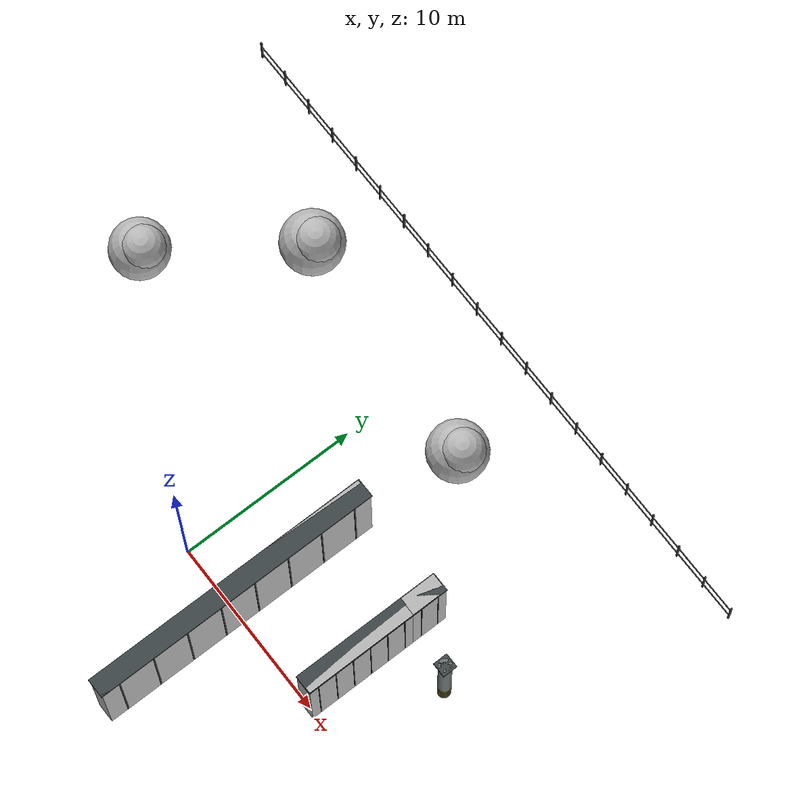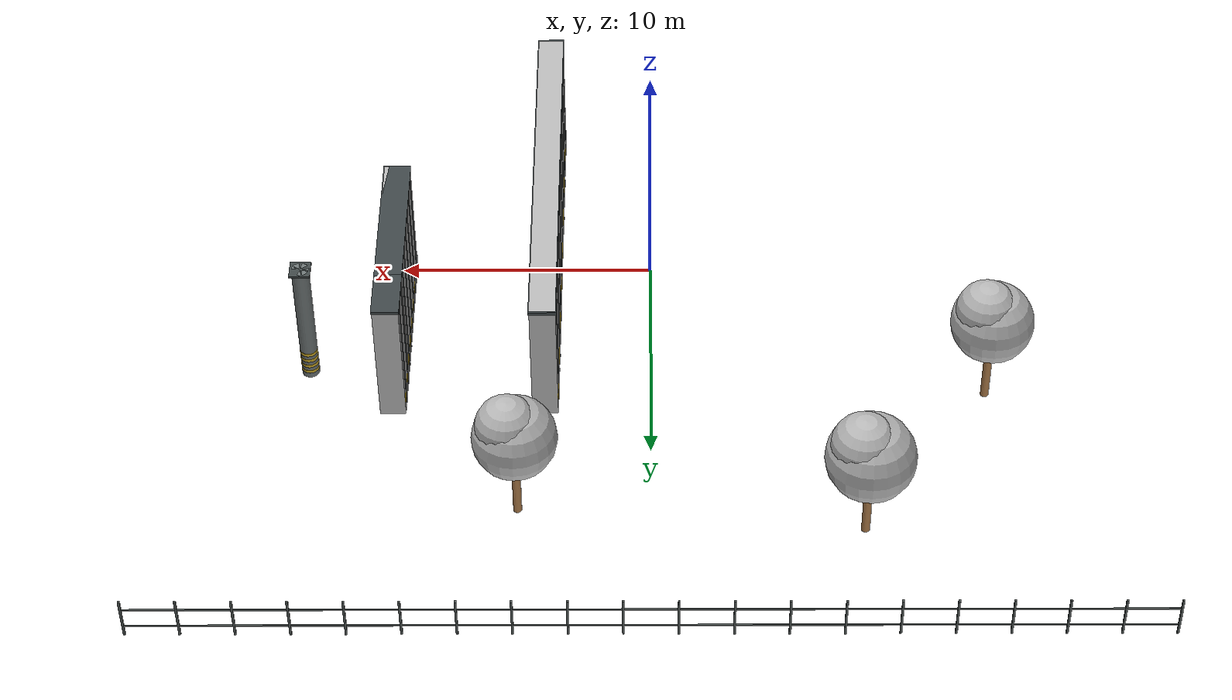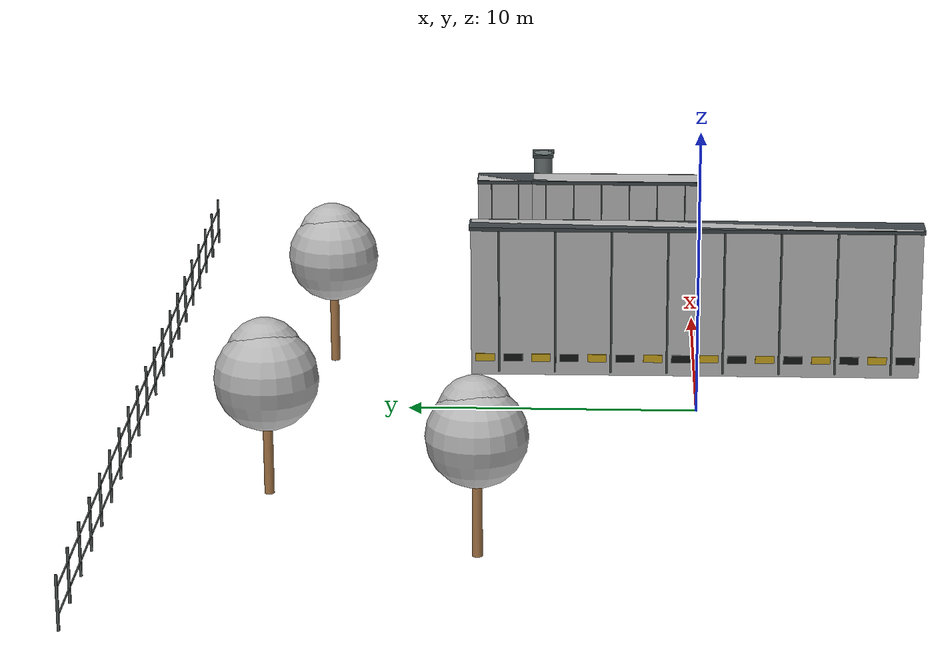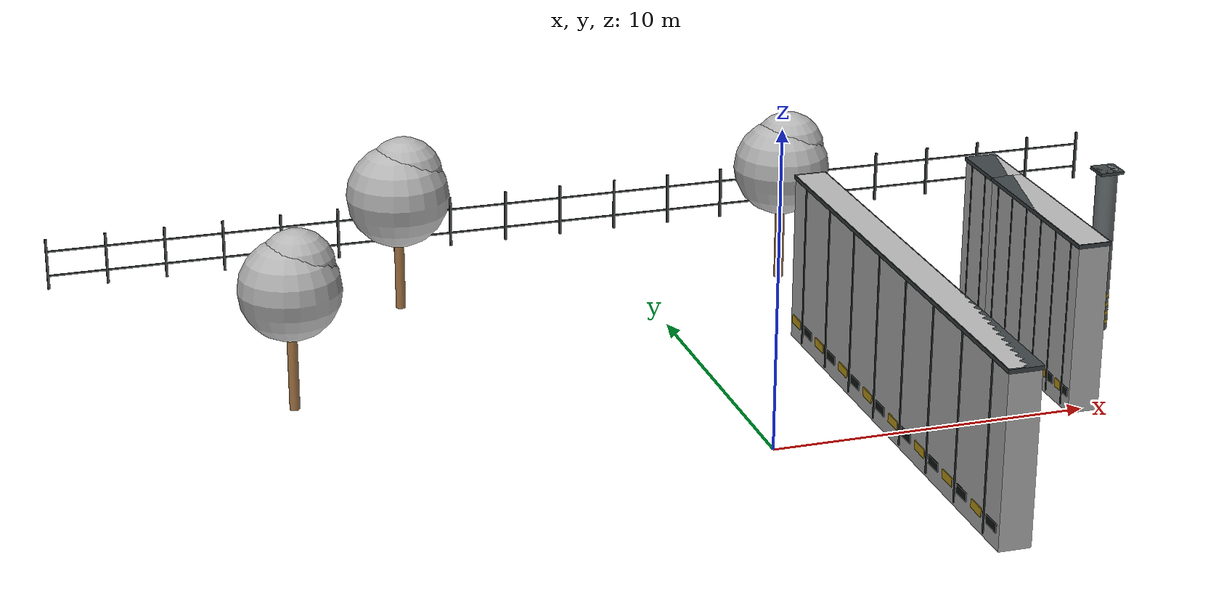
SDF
<sdf version="1.5">
 <world name="default">
  <include><uri>model://sun</uri></include>
  <model name="obstacle_wall_1">
   <static>true</static>
   <pose>4.078 0 0.003 0 0 0</pose>
   <link name="structure">
    <visual name="collision_wall">
     <pose>0 0 2.75 0 0 0</pose>
     <geometry><box><size>1 16 5.5</size></box></geometry>
     <material>
      <script>
       <uri>file:///home/fxxk/px4_agent/scene/materials/scripts</uri>
       <uri>file:///home/fxxk/px4_agent/scene/materials/textures</uri>
       <name>Yard/concrete</name>
      </script>
     </material>
    </visual>
    <collision name="collision_wall_collision">
     <pose>0 0 2.75 0 0 0</pose>
     <geometry><box><size>1 16 5.5</size></box></geometry>
     <surface><friction><ode><mu>1.0</mu><mu2>1.0</mu2></ode></friction></surface>
    </collision>
    <visual name="wall_coping">
     <pose>0 0 5.435 0 0 0</pose>
     <geometry><box><size>1.06 16.12 0.13</size></box></geometry>
     <material>
      <ambient>0.24 0.27 0.28 1</ambient>
      <diffuse>0.24 0.27 0.28 1</diffuse>
      <specular>0.04 0.04 0.04 1</specular>
     </material>
    </visual>
    <visual name="panel_joint_-1_0">
     <pose>-0.513 -7 2.75 0 0 0</pose>
     <geometry><box><size>0.028 0.068 5.3</size></box></geometry>
     <material>
      <ambient>0.26 0.29 0.29 1</ambient>
      <diffuse>0.26 0.29 0.29 1</diffuse>
      <specular>0.04 0.04 0.04 1</specular>
     </material>
    </visual>
    <visual name="panel_joint_1_0">
     <pose>0.513 -7 2.75 0 0 0</pose>
     <geometry><box><size>0.028 0.068 5.3</size></box></geometry>
     <material>
      <ambient>0.26 0.29 0.29 1</ambient>
      <diffuse>0.26 0.29 0.29 1</diffuse>
      <specular>0.04 0.04 0.04 1</specular>
     </material>
    </visual>
    <visual name="panel_joint_-1_1">
     <pose>-0.513 -5 2.75 0 0 0</pose>
     <geometry><box><size>0.028 0.068 5.3</size></box></geometry>
     <material>
      <ambient>0.26 0.29 0.29 1</ambient>
      <diffuse>0.26 0.29 0.29 1</diffuse>
      <specular>0.04 0.04 0.04 1</specular>
     </material>
    </visual>
    <visual name="panel_joint_1_1">
     <pose>0.513 -5 2.75 0 0 0</pose>
     <geometry><box><size>0.028 0.068 5.3</size></box></geometry>
     <material>
      <ambient>0.26 0.29 0.29 1</ambient>
      <diffuse>0.26 0.29 0.29 1</diffuse>
      <specular>0.04 0.04 0.04 1</specular>
     </material>
    </visual>
    <visual name="panel_joint_-1_2">
     <pose>-0.513 -3 2.75 0 0 0</pose>
     <geometry><box><size>0.028 0.068 5.3</size></box></geometry>
     <material>
      <ambient>0.26 0.29 0.29 1</ambient>
      <diffuse>0.26 0.29 0.29 1</diffuse>
      <specular>0.04 0.04 0.04 1</specular>
     </material>
    </visual>
    <visual name="panel_joint_1_2">
     <pose>0.513 -3 2.75 0 0 0</pose>
     <geometry><box><size>0.028 0.068 5.3</size></box></geometry>
     <material>
      <ambient>0.26 0.29 0.29 1</ambient>
      <diffuse>0.26 0.29 0.29 1</diffuse>
      <specular>0.04 0.04 0.04 1</specular>
     </material>
    </visual>
    <visual name="panel_joint_-1_3">
     <pose>-0.513 -1 2.75 0 0 0</pose>
     <geometry><box><size>0.028 0.068 5.3</size></box></geometry>
     <material>
      <ambient>0.26 0.29 0.29 1</ambient>
      <diffuse>0.26 0.29 0.29 1</diffuse>
      <specular>0.04 0.04 0.04 1</specular>
     </material>
    </visual>
    <visual name="panel_joint_1_3">
     <pose>0.513 -1 2.75 0 0 0</pose>
     <geometry><box><size>0.028 0.068 5.3</size></box></geometry>
     <material>
      <ambient>0.26 0.29 0.29 1</ambient>
      <diffuse>0.26 0.29 0.29 1</diffuse>
      <specular>0.04 0.04 0.04 1</specular>
     </material>
    </visual>
    <visual name="panel_joint_-1_4">
     <pose>-0.513 1 2.75 0 0 0</pose>
     <geometry><box><size>0.028 0.068 5.3</size></box></geometry>
     <material>
      <ambient>0.26 0.29 0.29 1</ambient>
      <diffuse>0.26 0.29 0.29 1</diffuse>
      <specular>0.04 0.04 0.04 1</specular>
     </material>
    </visual>
    <visual name="panel_joint_1_4">
     <pose>0.513 1 2.75 0 0 0</pose>
     <geometry><box><size>0.028 0.068 5.3</size></box></geometry>
     <material>
      <ambient>0.26 0.29 0.29 1</ambient>
      <diffuse>0.26 0.29 0.29 1</diffuse>
      <specular>0.04 0.04 0.04 1</specular>
     </material>
    </visual>
    <visual name="panel_joint_-1_5">
     <pose>-0.513 3 2.75 0 0 0</pose>
     <geometry><box><size>0.028 0.068 5.3</size></box></geometry>
     <material>
      <ambient>0.26 0.29 0.29 1</ambient>
      <diffuse>0.26 0.29 0.29 1</diffuse>
      <specular>0.04 0.04 0.04 1</specular>
     </material>
    </visual>
    <visual name="panel_joint_1_5">
     <pose>0.513 3 2.75 0 0 0</pose>
     <geometry><box><size>0.028 0.068 5.3</size></box></geometry>
     <material>
      <ambient>0.26 0.29 0.29 1</ambient>
      <diffuse>0.26 0.29 0.29 1</diffuse>
      <specular>0.04 0.04 0.04 1</specular>
     </material>
    </visual>
    <visual name="panel_joint_-1_6">
     <pose>-0.513 5 2.75 0 0 0</pose>
     <geometry><box><size>0.028 0.068 5.3</size></box></geometry>
     <material>
      <ambient>0.26 0.29 0.29 1</ambient>
      <diffuse>0.26 0.29 0.29 1</diffuse>
      <specular>0.04 0.04 0.04 1</specular>
     </material>
    </visual>
    <visual name="panel_joint_1_6">
     <pose>0.513 5 2.75 0 0 0</pose>
     <geometry><box><size>0.028 0.068 5.3</size></box></geometry>
     <material>
      <ambient>0.26 0.29 0.29 1</ambient>
      <diffuse>0.26 0.29 0.29 1</diffuse>
      <specular>0.04 0.04 0.04 1</specular>
     </material>
    </visual>
    <visual name="panel_joint_-1_7">
     <pose>-0.513 7 2.75 0 0 0</pose>
     <geometry><box><size>0.028 0.068 5.3</size></box></geometry>
     <material>
      <ambient>0.26 0.29 0.29 1</ambient>
      <diffuse>0.26 0.29 0.29 1</diffuse>
      <specular>0.04 0.04 0.04 1</specular>
     </material>
    </visual>
    <visual name="panel_joint_1_7">
     <pose>0.513 7 2.75 0 0 0</pose>
     <geometry><box><size>0.028 0.068 5.3</size></box></geometry>
     <material>
      <ambient>0.26 0.29 0.29 1</ambient>
      <diffuse>0.26 0.29 0.29 1</diffuse>
      <specular>0.04 0.04 0.04 1</specular>
     </material>
    </visual>
    <visual name="safety_band_0">
     <pose>-0.517 -7.5 0.65 0 0 0</pose>
     <geometry><box><size>0.025 0.68 0.28</size></box></geometry>
     <material>
      <ambient>0.075 0.085 0.085 1</ambient>
      <diffuse>0.075 0.085 0.085 1</diffuse>
      <specular>0.04 0.04 0.04 1</specular>
     </material>
    </visual>
    <visual name="safety_band_1">
     <pose>-0.517 -6.5 0.65 0 0 0</pose>
     <geometry><box><size>0.025 0.68 0.28</size></box></geometry>
     <material>
      <ambient>0.78 0.64 0.1 1</ambient>
      <diffuse>0.78 0.64 0.1 1</diffuse>
      <specular>0.04 0.04 0.04 1</specular>
     </material>
    </visual>
    <visual name="safety_band_2">
     <pose>-0.517 -5.5 0.65 0 0 0</pose>
     <geometry><box><size>0.025 0.68 0.28</size></box></geometry>
     <material>
      <ambient>0.075 0.085 0.085 1</ambient>
      <diffuse>0.075 0.085 0.085 1</diffuse>
      <specular>0.04 0.04 0.04 1</specular>
     </material>
    </visual>
    <visual name="safety_band_3">
     <pose>-0.517 -4.5 0.65 0 0 0</pose>
     <geometry><box><size>0.025 0.68 0.28</size></box></geometry>
     <material>
      <ambient>0.78 0.64 0.1 1</ambient>
      <diffuse>0.78 0.64 0.1 1</diffuse>
      <specular>0.04 0.04 0.04 1</specular>
     </material>
    </visual>
    <visual name="safety_band_4">
     <pose>-0.517 -3.5 0.65 0 0 0</pose>
     <geometry><box><size>0.025 0.68 0.28</size></box></geometry>
     <material>
      <ambient>0.075 0.085 0.085 1</ambient>
      <diffuse>0.075 0.085 0.085 1</diffuse>
      <specular>0.04 0.04 0.04 1</specular>
     </material>
    </visual>
    <visual name="safety_band_5">
     <pose>-0.517 -2.5 0.65 0 0 0</pose>
     <geometry><box><size>0.025 0.68 0.28</size></box></geometry>
     <material>
      <ambient>0.78 0.64 0.1 1</ambient>
      <diffuse>0.78 0.64 0.1 1</diffuse>
      <specular>0.04 0.04 0.04 1</specular>
     </material>
    </visual>
    <visual name="safety_band_6">
     <pose>-0.517 -1.5 0.65 0 0 0</pose>
     <geometry><box><size>0.025 0.68 0.28</size></box></geometry>
     <material>
      <ambient>0.075 0.085 0.085 1</ambient>
      <diffuse>0.075 0.085 0.085 1</diffuse>
      <specular>0.04 0.04 0.04 1</specular>
     </material>
    </visual>
    <visual name="safety_band_7">
     <pose>-0.517 -0.5 0.65 0 0 0</pose>
     <geometry><box><size>0.025 0.68 0.28</size></box></geometry>
     <material>
      <ambient>0.78 0.64 0.1 1</ambient>
      <diffuse>0.78 0.64 0.1 1</diffuse>
      <specular>0.04 0.04 0.04 1</specular>
     </material>
    </visual>
    <visual name="safety_band_8">
     <pose>-0.517 0.5 0.65 0 0 0</pose>
     <geometry><box><size>0.025 0.68 0.28</size></box></geometry>
     <material>
      <ambient>0.075 0.085 0.085 1</ambient>
      <diffuse>0.075 0.085 0.085 1</diffuse>
      <specular>0.04 0.04 0.04 1</specular>
     </material>
    </visual>
    <visual name="safety_band_9">
     <pose>-0.517 1.5 0.65 0 0 0</pose>
     <geometry><box><size>0.025 0.68 0.28</size></box></geometry>
     <material>
      <ambient>0.78 0.64 0.1 1</ambient>
      <diffuse>0.78 0.64 0.1 1</diffuse>
      <specular>0.04 0.04 0.04 1</specular>
     </material>
    </visual>
    <visual name="safety_band_10">
     <pose>-0.517 2.5 0.65 0 0 0</pose>
     <geometry><box><size>0.025 0.68 0.28</size></box></geometry>
     <material>
      <ambient>0.075 0.085 0.085 1</ambient>
      <diffuse>0.075 0.085 0.085 1</diffuse>
      <specular>0.04 0.04 0.04 1</specular>
     </material>
    </visual>
    <visual name="safety_band_11">
     <pose>-0.517 3.5 0.65 0 0 0</pose>
     <geometry><box><size>0.025 0.68 0.28</size></box></geometry>
     <material>
      <ambient>0.78 0.64 0.1 1</ambient>
      <diffuse>0.78 0.64 0.1 1</diffuse>
      <specular>0.04 0.04 0.04 1</specular>
     </material>
    </visual>
    <visual name="safety_band_12">
     <pose>-0.517 4.5 0.65 0 0 0</pose>
     <geometry><box><size>0.025 0.68 0.28</size></box></geometry>
     <material>
      <ambient>0.075 0.085 0.085 1</ambient>
      <diffuse>0.075 0.085 0.085 1</diffuse>
      <specular>0.04 0.04 0.04 1</specular>
     </material>
    </visual>
    <visual name="safety_band_13">
     <pose>-0.517 5.5 0.65 0 0 0</pose>
     <geometry><box><size>0.025 0.68 0.28</size></box></geometry>
     <material>
      <ambient>0.78 0.64 0.1 1</ambient>
      <diffuse>0.78 0.64 0.1 1</diffuse>
      <specular>0.04 0.04 0.04 1</specular>
     </material>
    </visual>
    <visual name="safety_band_14">
     <pose>-0.517 6.5 0.65 0 0 0</pose>
     <geometry><box><size>0.025 0.68 0.28</size></box></geometry>
     <material>
      <ambient>0.075 0.085 0.085 1</ambient>
      <diffuse>0.075 0.085 0.085 1</diffuse>
      <specular>0.04 0.04 0.04 1</specular>
     </material>
    </visual>
    <visual name="safety_band_15">
     <pose>-0.517 7.5 0.65 0 0 0</pose>
     <geometry><box><size>0.025 0.68 0.28</size></box></geometry>
     <material>
      <ambient>0.78 0.64 0.1 1</ambient>
      <diffuse>0.78 0.64 0.1 1</diffuse>
      <specular>0.04 0.04 0.04 1</specular>
     </material>
    </visual>
   </link>
  </model>
  <model name="obstacle_wall_2">
   <static>true</static>
   <pose>9.971 2.9055 0.003 0 0 0</pose>
   <link name="structure">
    <visual name="collision_wall">
     <pose>0 0 2.75 0 0 0</pose>
     <geometry><box><size>1 6.189 5.5</size></box></geometry>
     <material>
      <script>
       <uri>file:///home/fxxk/px4_agent/scene/materials/scripts</uri>
       <uri>file:///home/fxxk/px4_agent/scene/materials/textures</uri>
       <name>Yard/concrete</name>
      </script>
     </material>
    </visual>
    <collision name="collision_wall_collision">
     <pose>0 0 2.75 0 0 0</pose>
     <geometry><box><size>1 6.189 5.5</size></box></geometry>
     <surface><friction><ode><mu>1.0</mu><mu2>1.0</mu2></ode></friction></surface>
    </collision>
    <visual name="wall_coping">
     <pose>0 0 5.435 0 0 0</pose>
     <geometry><box><size>1.06 6.25089 0.13</size></box></geometry>
     <material>
      <ambient>0.24 0.27 0.28 1</ambient>
      <diffuse>0.24 0.27 0.28 1</diffuse>
      <specular>0.04 0.04 0.04 1</specular>
     </material>
    </visual>
    <visual name="panel_joint_-1_0">
     <pose>-0.513 -2.57875 2.75 0 0 0</pose>
     <geometry><box><size>0.028 0.035071 5.3</size></box></geometry>
     <material>
      <ambient>0.26 0.29 0.29 1</ambient>
      <diffuse>0.26 0.29 0.29 1</diffuse>
      <specular>0.04 0.04 0.04 1</specular>
     </material>
    </visual>
    <visual name="panel_joint_1_0">
     <pose>0.513 -2.57875 2.75 0 0 0</pose>
     <geometry><box><size>0.028 0.035071 5.3</size></box></geometry>
     <material>
      <ambient>0.26 0.29 0.29 1</ambient>
      <diffuse>0.26 0.29 0.29 1</diffuse>
      <specular>0.04 0.04 0.04 1</specular>
     </material>
    </visual>
    <visual name="panel_joint_-1_1">
     <pose>-0.513 -1.54725 2.75 0 0 0</pose>
     <geometry><box><size>0.028 0.035071 5.3</size></box></geometry>
     <material>
      <ambient>0.26 0.29 0.29 1</ambient>
      <diffuse>0.26 0.29 0.29 1</diffuse>
      <specular>0.04 0.04 0.04 1</specular>
     </material>
    </visual>
    <visual name="panel_joint_1_1">
     <pose>0.513 -1.54725 2.75 0 0 0</pose>
     <geometry><box><size>0.028 0.035071 5.3</size></box></geometry>
     <material>
      <ambient>0.26 0.29 0.29 1</ambient>
      <diffuse>0.26 0.29 0.29 1</diffuse>
      <specular>0.04 0.04 0.04 1</specular>
     </material>
    </visual>
    <visual name="panel_joint_-1_2">
     <pose>-0.513 -0.51575 2.75 0 0 0</pose>
     <geometry><box><size>0.028 0.035071 5.3</size></box></geometry>
     <material>
      <ambient>0.26 0.29 0.29 1</ambient>
      <diffuse>0.26 0.29 0.29 1</diffuse>
      <specular>0.04 0.04 0.04 1</specular>
     </material>
    </visual>
    <visual name="panel_joint_1_2">
     <pose>0.513 -0.51575 2.75 0 0 0</pose>
     <geometry><box><size>0.028 0.035071 5.3</size></box></geometry>
     <material>
      <ambient>0.26 0.29 0.29 1</ambient>
      <diffuse>0.26 0.29 0.29 1</diffuse>
      <specular>0.04 0.04 0.04 1</specular>
     </material>
    </visual>
    <visual name="panel_joint_-1_3">
     <pose>-0.513 0.51575 2.75 0 0 0</pose>
     <geometry><box><size>0.028 0.035071 5.3</size></box></geometry>
     <material>
      <ambient>0.26 0.29 0.29 1</ambient>
      <diffuse>0.26 0.29 0.29 1</diffuse>
      <specular>0.04 0.04 0.04 1</specular>
     </material>
    </visual>
    <visual name="panel_joint_1_3">
     <pose>0.513 0.51575 2.75 0 0 0</pose>
     <geometry><box><size>0.028 0.035071 5.3</size></box></geometry>
     <material>
      <ambient>0.26 0.29 0.29 1</ambient>
      <diffuse>0.26 0.29 0.29 1</diffuse>
      <specular>0.04 0.04 0.04 1</specular>
     </material>
    </visual>
    <visual name="panel_joint_-1_4">
     <pose>-0.513 1.54725 2.75 0 0 0</pose>
     <geometry><box><size>0.028 0.035071 5.3</size></box></geometry>
     <material>
      <ambient>0.26 0.29 0.29 1</ambient>
      <diffuse>0.26 0.29 0.29 1</diffuse>
      <specular>0.04 0.04 0.04 1</specular>
     </material>
    </visual>
    <visual name="panel_joint_1_4">
     <pose>0.513 1.54725 2.75 0 0 0</pose>
     <geometry><box><size>0.028 0.035071 5.3</size></box></geometry>
     <material>
      <ambient>0.26 0.29 0.29 1</ambient>
      <diffuse>0.26 0.29 0.29 1</diffuse>
      <specular>0.04 0.04 0.04 1</specular>
     </material>
    </visual>
    <visual name="panel_joint_-1_5">
     <pose>-0.513 2.57875 2.75 0 0 0</pose>
     <geometry><box><size>0.028 0.035071 5.3</size></box></geometry>
     <material>
      <ambient>0.26 0.29 0.29 1</ambient>
      <diffuse>0.26 0.29 0.29 1</diffuse>
      <specular>0.04 0.04 0.04 1</specular>
     </material>
    </visual>
    <visual name="panel_joint_1_5">
     <pose>0.513 2.57875 2.75 0 0 0</pose>
     <geometry><box><size>0.028 0.035071 5.3</size></box></geometry>
     <material>
      <ambient>0.26 0.29 0.29 1</ambient>
      <diffuse>0.26 0.29 0.29 1</diffuse>
      <specular>0.04 0.04 0.04 1</specular>
     </material>
    </visual>
    <visual name="safety_band_0">
     <pose>-0.517 -2.836625 0.65 0 0 0</pose>
     <geometry><box><size>0.025 0.35071 0.28</size></box></geometry>
     <material>
      <ambient>0.075 0.085 0.085 1</ambient>
      <diffuse>0.075 0.085 0.085 1</diffuse>
      <specular>0.04 0.04 0.04 1</specular>
     </material>
    </visual>
    <visual name="safety_band_1">
     <pose>-0.517 -2.320875 0.65 0 0 0</pose>
     <geometry><box><size>0.025 0.35071 0.28</size></box></geometry>
     <material>
      <ambient>0.78 0.64 0.1 1</ambient>
      <diffuse>0.78 0.64 0.1 1</diffuse>
      <specular>0.04 0.04 0.04 1</specular>
     </material>
    </visual>
    <visual name="safety_band_2">
     <pose>-0.517 -1.805125 0.65 0 0 0</pose>
     <geometry><box><size>0.025 0.35071 0.28</size></box></geometry>
     <material>
      <ambient>0.075 0.085 0.085 1</ambient>
      <diffuse>0.075 0.085 0.085 1</diffuse>
      <specular>0.04 0.04 0.04 1</specular>
     </material>
    </visual>
    <visual name="safety_band_3">
     <pose>-0.517 -1.289375 0.65 0 0 0</pose>
     <geometry><box><size>0.025 0.35071 0.28</size></box></geometry>
     <material>
      <ambient>0.78 0.64 0.1 1</ambient>
      <diffuse>0.78 0.64 0.1 1</diffuse>
      <specular>0.04 0.04 0.04 1</specular>
     </material>
    </visual>
    <visual name="safety_band_4">
     <pose>-0.517 -0.773625 0.65 0 0 0</pose>
     <geometry><box><size>0.025 0.35071 0.28</size></box></geometry>
     <material>
      <ambient>0.075 0.085 0.085 1</ambient>
      <diffuse>0.075 0.085 0.085 1</diffuse>
      <specular>0.04 0.04 0.04 1</specular>
     </material>
    </visual>
    <visual name="safety_band_5">
     <pose>-0.517 -0.257875 0.65 0 0 0</pose>
     <geometry><box><size>0.025 0.35071 0.28</size></box></geometry>
     <material>
      <ambient>0.78 0.64 0.1 1</ambient>
      <diffuse>0.78 0.64 0.1 1</diffuse>
      <specular>0.04 0.04 0.04 1</specular>
     </material>
    </visual>
    <visual name="safety_band_6">
     <pose>-0.517 0.257875 0.65 0 0 0</pose>
     <geometry><box><size>0.025 0.35071 0.28</size></box></geometry>
     <material>
      <ambient>0.075 0.085 0.085 1</ambient>
      <diffuse>0.075 0.085 0.085 1</diffuse>
      <specular>0.04 0.04 0.04 1</specular>
     </material>
    </visual>
    <visual name="safety_band_7">
     <pose>-0.517 0.773625 0.65 0 0 0</pose>
     <geometry><box><size>0.025 0.35071 0.28</size></box></geometry>
     <material>
      <ambient>0.78 0.64 0.1 1</ambient>
      <diffuse>0.78 0.64 0.1 1</diffuse>
      <specular>0.04 0.04 0.04 1</specular>
     </material>
    </visual>
    <visual name="safety_band_8">
     <pose>-0.517 1.289375 0.65 0 0 0</pose>
     <geometry><box><size>0.025 0.35071 0.28</size></box></geometry>
     <material>
      <ambient>0.075 0.085 0.085 1</ambient>
      <diffuse>0.075 0.085 0.085 1</diffuse>
      <specular>0.04 0.04 0.04 1</specular>
     </material>
    </visual>
    <visual name="safety_band_9">
     <pose>-0.517 1.805125 0.65 0 0 0</pose>
     <geometry><box><size>0.025 0.35071 0.28</size></box></geometry>
     <material>
      <ambient>0.78 0.64 0.1 1</ambient>
      <diffuse>0.78 0.64 0.1 1</diffuse>
      <specular>0.04 0.04 0.04 1</specular>
     </material>
    </visual>
    <visual name="safety_band_10">
     <pose>-0.517 2.320875 0.65 0 0 0</pose>
     <geometry><box><size>0.025 0.35071 0.28</size></box></geometry>
     <material>
      <ambient>0.075 0.085 0.085 1</ambient>
      <diffuse>0.075 0.085 0.085 1</diffuse>
      <specular>0.04 0.04 0.04 1</specular>
     </material>
    </visual>
    <visual name="safety_band_11">
     <pose>-0.517 2.836625 0.65 0 0 0</pose>
     <geometry><box><size>0.025 0.35071 0.28</size></box></geometry>
     <material>
      <ambient>0.78 0.64 0.1 1</ambient>
      <diffuse>0.78 0.64 0.1 1</diffuse>
      <specular>0.04 0.04 0.04 1</specular>
     </material>
    </visual>
   </link>
  </model>
  <model name="north_boundary_cargo_stack">
   <static>true</static>
   <pose>9.971 7 0.003 0 0 0</pose>
   <link name="structure">
    <visual name="collision_wall">
     <pose>0 0 2.75 0 0 0</pose>
     <geometry><box><size>1 2 5.5</size></box></geometry>
     <material>
      <script>
       <uri>file:///home/fxxk/px4_agent/scene/materials/scripts</uri>
       <uri>file:///home/fxxk/px4_agent/scene/materials/textures</uri>
       <name>Yard/concrete</name>
      </script>
     </material>
    </visual>
    <collision name="collision_wall_collision">
     <pose>0 0 2.75 0 0 0</pose>
     <geometry><box><size>1 2 5.5</size></box></geometry>
     <surface><friction><ode><mu>1.0</mu><mu2>1.0</mu2></ode></friction></surface>
    </collision>
    <visual name="wall_coping">
     <pose>0 0 5.435 0 0 0</pose>
     <geometry><box><size>1.06 2.06 0.13</size></box></geometry>
     <material>
      <ambient>0.24 0.27 0.28 1</ambient>
      <diffuse>0.24 0.27 0.28 1</diffuse>
      <specular>0.04 0.04 0.04 1</specular>
     </material>
    </visual>
    <visual name="panel_joint_-1_0">
     <pose>-0.513 -0.5 2.75 0 0 0</pose>
     <geometry><box><size>0.028 0.034 5.3</size></box></geometry>
     <material>
      <ambient>0.26 0.29 0.29 1</ambient>
      <diffuse>0.26 0.29 0.29 1</diffuse>
      <specular>0.04 0.04 0.04 1</specular>
     </material>
    </visual>
    <visual name="panel_joint_1_0">
     <pose>0.513 -0.5 2.75 0 0 0</pose>
     <geometry><box><size>0.028 0.034 5.3</size></box></geometry>
     <material>
      <ambient>0.26 0.29 0.29 1</ambient>
      <diffuse>0.26 0.29 0.29 1</diffuse>
      <specular>0.04 0.04 0.04 1</specular>
     </material>
    </visual>
    <visual name="panel_joint_-1_1">
     <pose>-0.513 0.5 2.75 0 0 0</pose>
     <geometry><box><size>0.028 0.034 5.3</size></box></geometry>
     <material>
      <ambient>0.26 0.29 0.29 1</ambient>
      <diffuse>0.26 0.29 0.29 1</diffuse>
      <specular>0.04 0.04 0.04 1</specular>
     </material>
    </visual>
    <visual name="panel_joint_1_1">
     <pose>0.513 0.5 2.75 0 0 0</pose>
     <geometry><box><size>0.028 0.034 5.3</size></box></geometry>
     <material>
      <ambient>0.26 0.29 0.29 1</ambient>
      <diffuse>0.26 0.29 0.29 1</diffuse>
      <specular>0.04 0.04 0.04 1</specular>
     </material>
    </visual>
    <visual name="safety_band_0">
     <pose>-0.517 -0.75 0.65 0 0 0</pose>
     <geometry><box><size>0.025 0.34 0.28</size></box></geometry>
     <material>
      <ambient>0.075 0.085 0.085 1</ambient>
      <diffuse>0.075 0.085 0.085 1</diffuse>
      <specular>0.04 0.04 0.04 1</specular>
     </material>
    </visual>
    <visual name="safety_band_1">
     <pose>-0.517 -0.25 0.65 0 0 0</pose>
     <geometry><box><size>0.025 0.34 0.28</size></box></geometry>
     <material>
      <ambient>0.78 0.64 0.1 1</ambient>
      <diffuse>0.78 0.64 0.1 1</diffuse>
      <specular>0.04 0.04 0.04 1</specular>
     </material>
    </visual>
    <visual name="safety_band_2">
     <pose>-0.517 0.25 0.65 0 0 0</pose>
     <geometry><box><size>0.025 0.34 0.28</size></box></geometry>
     <material>
      <ambient>0.075 0.085 0.085 1</ambient>
      <diffuse>0.075 0.085 0.085 1</diffuse>
      <specular>0.04 0.04 0.04 1</specular>
     </material>
    </visual>
    <visual name="safety_band_3">
     <pose>-0.517 0.75 0.65 0 0 0</pose>
     <geometry><box><size>0.025 0.34 0.28</size></box></geometry>
     <material>
      <ambient>0.78 0.64 0.1 1</ambient>
      <diffuse>0.78 0.64 0.1 1</diffuse>
      <specular>0.04 0.04 0.04 1</specular>
     </material>
    </visual>
   </link>
  </model>
  <model name="utility_pillar_northeast">
   <static>true</static>
   <pose>13.328 5.688 0.003 0 0 0</pose>
   <link name="structure">
    <visual name="tall_pillar">
     <pose>0 0 2.75 0 0 0</pose>
     <geometry><cylinder><radius>0.34</radius><length>5.5</length></cylinder></geometry>
     <material>
      <ambient>0.43 0.46 0.46 1</ambient>
      <diffuse>0.43 0.46 0.46 1</diffuse>
      <specular>0.04 0.04 0.04 1</specular>
     </material>
    </visual>
    <collision name="tall_pillar_collision">
     <pose>0 0 2.75 0 0 0</pose>
     <geometry><cylinder><radius>0.34</radius><length>5.5</length></cylinder></geometry>
     <surface><friction><ode><mu>1.0</mu><mu2>1.0</mu2></ode></friction></surface>
    </collision>
    <visual name="top_cap">
     <pose>0 0 5.45 0 0 0</pose>
     <geometry><box><size>0.8 0.8 0.1</size></box></geometry>
     <material>
      <ambient>0.25 0.28 0.28 1</ambient>
      <diffuse>0.25 0.28 0.28 1</diffuse>
      <specular>0.04 0.04 0.04 1</specular>
     </material>
    </visual>
    <visual name="hazard_ring_0">
     <pose>0 0 0.3 0 0 0</pose>
     <geometry><cylinder><radius>0.345</radius><length>0.14</length></cylinder></geometry>
     <material>
      <ambient>0.8 0.66 0.14 1</ambient>
      <diffuse>0.8 0.66 0.14 1</diffuse>
      <specular>0.04 0.04 0.04 1</specular>
     </material>
    </visual>
    <visual name="hazard_ring_1">
     <pose>0 0 0.6 0 0 0</pose>
     <geometry><cylinder><radius>0.345</radius><length>0.14</length></cylinder></geometry>
     <material>
      <ambient>0.8 0.66 0.14 1</ambient>
      <diffuse>0.8 0.66 0.14 1</diffuse>
      <specular>0.04 0.04 0.04 1</specular>
     </material>
    </visual>
    <visual name="hazard_ring_2">
     <pose>0 0 0.9 0 0 0</pose>
     <geometry><cylinder><radius>0.345</radius><length>0.14</length></cylinder></geometry>
     <material>
      <ambient>0.8 0.66 0.14 1</ambient>
      <diffuse>0.8 0.66 0.14 1</diffuse>
      <specular>0.04 0.04 0.04 1</specular>
     </material>
    </visual>
    <visual name="hazard_ring_3">
     <pose>0 0 1.2 0 0 0</pose>
     <geometry><cylinder><radius>0.345</radius><length>0.14</length></cylinder></geometry>
     <material>
      <ambient>0.8 0.66 0.14 1</ambient>
      <diffuse>0.8 0.66 0.14 1</diffuse>
      <specular>0.04 0.04 0.04 1</specular>
     </material>
    </visual>
   </link>
  </model>
  <model name="yard_tree_2">
   <static>true</static>
   <pose>-13 7 0.003 0 0 0</pose>
   <link name="structure">
    <visual name="trunk">
     <pose>0 0 1.6 0 0 0</pose>
     <geometry><cylinder><radius>0.16</radius><length>3.2</length></cylinder></geometry>
     <material>
      <script>
       <uri>file:///home/fxxk/px4_agent/scene/materials/scripts</uri>
       <uri>file:///home/fxxk/px4_agent/scene/materials/textures</uri>
       <name>Yard/wood</name>
      </script>
     </material>
    </visual>
    <collision name="trunk_collision">
     <pose>0 0 1.6 0 0 0</pose>
     <geometry><cylinder><radius>0.16</radius><length>3.2</length></cylinder></geometry>
     <surface><friction><ode><mu>1.0</mu><mu2>1.0</mu2></ode></friction></surface>
    </collision>
    <visual name="crown">
     <pose>0 0 3.95 0 0 0</pose>
     <geometry><sphere><radius>1.6</radius></sphere></geometry>
     <material>
      <script>
       <uri>file:///home/fxxk/px4_agent/scene/materials/scripts</uri>
       <uri>file:///home/fxxk/px4_agent/scene/materials/textures</uri>
       <name>Yard/foliage</name>
      </script>
     </material>
    </visual>
    <collision name="crown_collision">
     <pose>0 0 3.95 0 0 0</pose>
     <geometry><sphere><radius>1.6</radius></sphere></geometry>
     <surface><friction><ode><mu>1.0</mu><mu2>1.0</mu2></ode></friction></surface>
    </collision>
    <visual name="crown_top">
     <pose>0.25 0.06 4.6 0 0 0</pose>
     <geometry><sphere><radius>1.2000000000000002</radius></sphere></geometry>
     <material>
      <script>
       <uri>file:///home/fxxk/px4_agent/scene/materials/scripts</uri>
       <uri>file:///home/fxxk/px4_agent/scene/materials/textures</uri>
       <name>Yard/foliage</name>
      </script>
     </material>
    </visual>
   </link>
  </model>
  <model name="yard_tree_3">
   <static>true</static>
   <pose>-8 14 0.003 0 0 0</pose>
   <link name="structure">
    <visual name="trunk">
     <pose>0 0 1.6 0 0 0</pose>
     <geometry><cylinder><radius>0.16</radius><length>3.2</length></cylinder></geometry>
     <material>
      <script>
       <uri>file:///home/fxxk/px4_agent/scene/materials/scripts</uri>
       <uri>file:///home/fxxk/px4_agent/scene/materials/textures</uri>
       <name>Yard/wood</name>
      </script>
     </material>
    </visual>
    <collision name="trunk_collision">
     <pose>0 0 1.6 0 0 0</pose>
     <geometry><cylinder><radius>0.16</radius><length>3.2</length></cylinder></geometry>
     <surface><friction><ode><mu>1.0</mu><mu2>1.0</mu2></ode></friction></surface>
    </collision>
    <visual name="crown">
     <pose>0 0 3.95 0 0 0</pose>
     <geometry><sphere><radius>1.7</radius></sphere></geometry>
     <material>
      <script>
       <uri>file:///home/fxxk/px4_agent/scene/materials/scripts</uri>
       <uri>file:///home/fxxk/px4_agent/scene/materials/textures</uri>
       <name>Yard/foliage</name>
      </script>
     </material>
    </visual>
    <collision name="crown_collision">
     <pose>0 0 3.95 0 0 0</pose>
     <geometry><sphere><radius>1.7</radius></sphere></geometry>
     <surface><friction><ode><mu>1.0</mu><mu2>1.0</mu2></ode></friction></surface>
    </collision>
    <visual name="crown_top">
     <pose>0.25 0.06 4.6 0 0 0</pose>
     <geometry><sphere><radius>1.275</radius></sphere></geometry>
     <material>
      <script>
       <uri>file:///home/fxxk/px4_agent/scene/materials/scripts</uri>
       <uri>file:///home/fxxk/px4_agent/scene/materials/textures</uri>
       <name>Yard/foliage</name>
      </script>
     </material>
    </visual>
   </link>
  </model>
  <model name="yard_tree_4">
   <static>true</static>
   <pose>5 13 0.003 0 0 0</pose>
   <link name="structure">
    <visual name="trunk">
     <pose>0 0 1.6 0 0 0</pose>
     <geometry><cylinder><radius>0.16</radius><length>3.2</length></cylinder></geometry>
     <material>
      <script>
       <uri>file:///home/fxxk/px4_agent/scene/materials/scripts</uri>
       <uri>file:///home/fxxk/px4_agent/scene/materials/textures</uri>
       <name>Yard/wood</name>
      </script>
     </material>
    </visual>
    <collision name="trunk_collision">
     <pose>0 0 1.6 0 0 0</pose>
     <geometry><cylinder><radius>0.16</radius><length>3.2</length></cylinder></geometry>
     <surface><friction><ode><mu>1.0</mu><mu2>1.0</mu2></ode></friction></surface>
    </collision>
    <visual name="crown">
     <pose>0 0 3.95 0 0 0</pose>
     <geometry><sphere><radius>1.6</radius></sphere></geometry>
     <material>
      <script>
       <uri>file:///home/fxxk/px4_agent/scene/materials/scripts</uri>
       <uri>file:///home/fxxk/px4_agent/scene/materials/textures</uri>
       <name>Yard/foliage</name>
      </script>
     </material>
    </visual>
    <collision name="crown_collision">
     <pose>0 0 3.95 0 0 0</pose>
     <geometry><sphere><radius>1.6</radius></sphere></geometry>
     <surface><friction><ode><mu>1.0</mu><mu2>1.0</mu2></ode></friction></surface>
    </collision>
    <visual name="crown_top">
     <pose>0.25 0.06 4.6 0 0 0</pose>
     <geometry><sphere><radius>1.2000000000000002</radius></sphere></geometry>
     <material>
      <script>
       <uri>file:///home/fxxk/px4_agent/scene/materials/scripts</uri>
       <uri>file:///home/fxxk/px4_agent/scene/materials/textures</uri>
       <name>Yard/foliage</name>
      </script>
     </material>
    </visual>
   </link>
  </model>
  <model name="north_fence">
   <static>true</static>
   <pose>0 19 0.003 0 0 0</pose>
   <link name="structure">
    <collision name="fence_collision">
     <pose>0 0 .9 0 0 0</pose>
     <geometry><box><size>38 0.12 1.8</size></box></geometry>
    </collision>
    <visual name="fence_post_0">
     <pose>-19 0 0.9 0 0 0</pose>
     <geometry><box><size>0.08 0.08 1.8</size></box></geometry>
     <material>
      <ambient>0.31 0.34 0.33 1</ambient>
      <diffuse>0.31 0.34 0.33 1</diffuse>
      <specular>0.04 0.04 0.04 1</specular>
     </material>
    </visual>
    <visual name="fence_post_1">
     <pose>-17 0 0.9 0 0 0</pose>
     <geometry><box><size>0.08 0.08 1.8</size></box></geometry>
     <material>
      <ambient>0.31 0.34 0.33 1</ambient>
      <diffuse>0.31 0.34 0.33 1</diffuse>
      <specular>0.04 0.04 0.04 1</specular>
     </material>
    </visual>
    <visual name="fence_post_2">
     <pose>-15 0 0.9 0 0 0</pose>
     <geometry><box><size>0.08 0.08 1.8</size></box></geometry>
     <material>
      <ambient>0.31 0.34 0.33 1</ambient>
      <diffuse>0.31 0.34 0.33 1</diffuse>
      <specular>0.04 0.04 0.04 1</specular>
     </material>
    </visual>
    <visual name="fence_post_3">
     <pose>-13 0 0.9 0 0 0</pose>
     <geometry><box><size>0.08 0.08 1.8</size></box></geometry>
     <material>
      <ambient>0.31 0.34 0.33 1</ambient>
      <diffuse>0.31 0.34 0.33 1</diffuse>
      <specular>0.04 0.04 0.04 1</specular>
     </material>
    </visual>
    <visual name="fence_post_4">
     <pose>-11 0 0.9 0 0 0</pose>
     <geometry><box><size>0.08 0.08 1.8</size></box></geometry>
     <material>
      <ambient>0.31 0.34 0.33 1</ambient>
      <diffuse>0.31 0.34 0.33 1</diffuse>
      <specular>0.04 0.04 0.04 1</specular>
     </material>
    </visual>
    <visual name="fence_post_5">
     <pose>-9 0 0.9 0 0 0</pose>
     <geometry><box><size>0.08 0.08 1.8</size></box></geometry>
     <material>
      <ambient>0.31 0.34 0.33 1</ambient>
      <diffuse>0.31 0.34 0.33 1</diffuse>
      <specular>0.04 0.04 0.04 1</specular>
     </material>
    </visual>
    <visual name="fence_post_6">
     <pose>-7 0 0.9 0 0 0</pose>
     <geometry><box><size>0.08 0.08 1.8</size></box></geometry>
     <material>
      <ambient>0.31 0.34 0.33 1</ambient>
      <diffuse>0.31 0.34 0.33 1</diffuse>
      <specular>0.04 0.04 0.04 1</specular>
     </material>
    </visual>
    <visual name="fence_post_7">
     <pose>-5 0 0.9 0 0 0</pose>
     <geometry><box><size>0.08 0.08 1.8</size></box></geometry>
     <material>
      <ambient>0.31 0.34 0.33 1</ambient>
      <diffuse>0.31 0.34 0.33 1</diffuse>
      <specular>0.04 0.04 0.04 1</specular>
     </material>
    </visual>
    <visual name="fence_post_8">
     <pose>-3 0 0.9 0 0 0</pose>
     <geometry><box><size>0.08 0.08 1.8</size></box></geometry>
     <material>
      <ambient>0.31 0.34 0.33 1</ambient>
      <diffuse>0.31 0.34 0.33 1</diffuse>
      <specular>0.04 0.04 0.04 1</specular>
     </material>
    </visual>
    <visual name="fence_post_9">
     <pose>-1 0 0.9 0 0 0</pose>
     <geometry><box><size>0.08 0.08 1.8</size></box></geometry>
     <material>
      <ambient>0.31 0.34 0.33 1</ambient>
      <diffuse>0.31 0.34 0.33 1</diffuse>
      <specular>0.04 0.04 0.04 1</specular>
     </material>
    </visual>
    <visual name="fence_post_10">
     <pose>1 0 0.9 0 0 0</pose>
     <geometry><box><size>0.08 0.08 1.8</size></box></geometry>
     <material>
      <ambient>0.31 0.34 0.33 1</ambient>
      <diffuse>0.31 0.34 0.33 1</diffuse>
      <specular>0.04 0.04 0.04 1</specular>
     </material>
    </visual>
    <visual name="fence_post_11">
     <pose>3 0 0.9 0 0 0</pose>
     <geometry><box><size>0.08 0.08 1.8</size></box></geometry>
     <material>
      <ambient>0.31 0.34 0.33 1</ambient>
      <diffuse>0.31 0.34 0.33 1</diffuse>
      <specular>0.04 0.04 0.04 1</specular>
     </material>
    </visual>
    <visual name="fence_post_12">
     <pose>5 0 0.9 0 0 0</pose>
     <geometry><box><size>0.08 0.08 1.8</size></box></geometry>
     <material>
      <ambient>0.31 0.34 0.33 1</ambient>
      <diffuse>0.31 0.34 0.33 1</diffuse>
      <specular>0.04 0.04 0.04 1</specular>
     </material>
    </visual>
    <visual name="fence_post_13">
     <pose>7 0 0.9 0 0 0</pose>
     <geometry><box><size>0.08 0.08 1.8</size></box></geometry>
     <material>
      <ambient>0.31 0.34 0.33 1</ambient>
      <diffuse>0.31 0.34 0.33 1</diffuse>
      <specular>0.04 0.04 0.04 1</specular>
     </material>
    </visual>
    <visual name="fence_post_14">
     <pose>9 0 0.9 0 0 0</pose>
     <geometry><box><size>0.08 0.08 1.8</size></box></geometry>
     <material>
      <ambient>0.31 0.34 0.33 1</ambient>
      <diffuse>0.31 0.34 0.33 1</diffuse>
      <specular>0.04 0.04 0.04 1</specular>
     </material>
    </visual>
    <visual name="fence_post_15">
     <pose>11 0 0.9 0 0 0</pose>
     <geometry><box><size>0.08 0.08 1.8</size></box></geometry>
     <material>
      <ambient>0.31 0.34 0.33 1</ambient>
      <diffuse>0.31 0.34 0.33 1</diffuse>
      <specular>0.04 0.04 0.04 1</specular>
     </material>
    </visual>
    <visual name="fence_post_16">
     <pose>13 0 0.9 0 0 0</pose>
     <geometry><box><size>0.08 0.08 1.8</size></box></geometry>
     <material>
      <ambient>0.31 0.34 0.33 1</ambient>
      <diffuse>0.31 0.34 0.33 1</diffuse>
      <specular>0.04 0.04 0.04 1</specular>
     </material>
    </visual>
    <visual name="fence_post_17">
     <pose>15 0 0.9 0 0 0</pose>
     <geometry><box><size>0.08 0.08 1.8</size></box></geometry>
     <material>
      <ambient>0.31 0.34 0.33 1</ambient>
      <diffuse>0.31 0.34 0.33 1</diffuse>
      <specular>0.04 0.04 0.04 1</specular>
     </material>
    </visual>
    <visual name="fence_post_18">
     <pose>17 0 0.9 0 0 0</pose>
     <geometry><box><size>0.08 0.08 1.8</size></box></geometry>
     <material>
      <ambient>0.31 0.34 0.33 1</ambient>
      <diffuse>0.31 0.34 0.33 1</diffuse>
      <specular>0.04 0.04 0.04 1</specular>
     </material>
    </visual>
    <visual name="fence_post_19">
     <pose>19 0 0.9 0 0 0</pose>
     <geometry><box><size>0.08 0.08 1.8</size></box></geometry>
     <material>
      <ambient>0.31 0.34 0.33 1</ambient>
      <diffuse>0.31 0.34 0.33 1</diffuse>
      <specular>0.04 0.04 0.04 1</specular>
     </material>
    </visual>
    <visual name="fence_rail_0">
     <pose>0 0 0.48 0 0 0</pose>
     <geometry><box><size>38 0.04 0.055</size></box></geometry>
     <material>
      <ambient>0.35 0.38 0.37 1</ambient>
      <diffuse>0.35 0.38 0.37 1</diffuse>
      <specular>0.04 0.04 0.04 1</specular>
     </material>
    </visual>
    <visual name="fence_rail_1">
     <pose>0 0 1.35 0 0 0</pose>
     <geometry><box><size>38 0.04 0.055</size></box></geometry>
     <material>
      <ambient>0.35 0.38 0.37 1</ambient>
      <diffuse>0.35 0.38 0.37 1</diffuse>
      <specular>0.04 0.04 0.04 1</specular>
     </material>
    </visual>
   </link>
  </model>
 </world>
</sdf>
